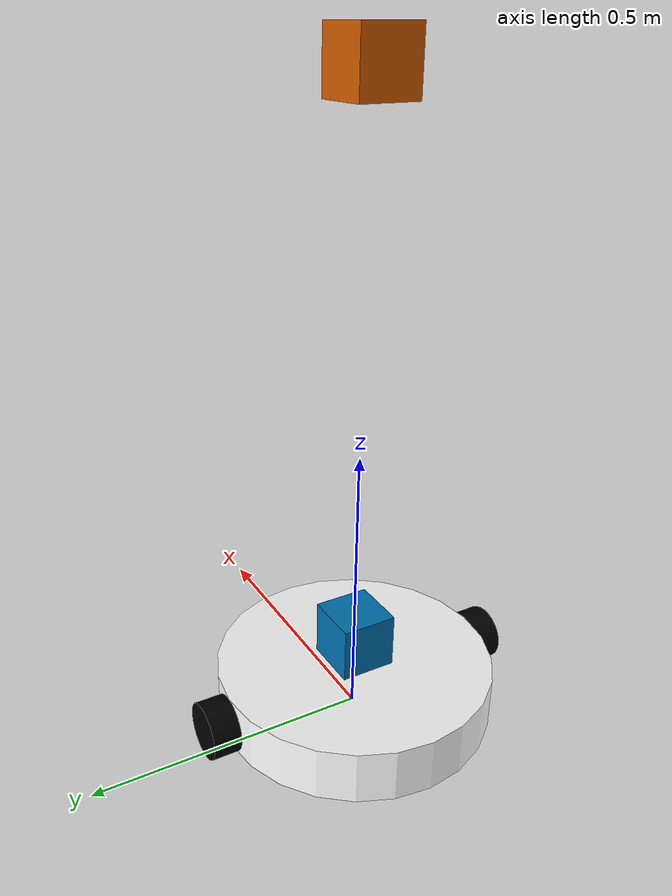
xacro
<?xml version="1.0"?>
<robot name="wheelchair" xmlns:xacro="http://ros.org/wiki/xacro">

  <!-- DEFINING GENERIC PROPERTIES THAT ARE USED IN THE XACRO FILE -->

  <!-- along x axis -->
  <xacro:property name="base_dia" value="0.5"/>
  <!-- along y axis -->
  <xacro:property name="base_dia" value="0.5"/>
  <!-- along z axis -->
  <xacro:property name="base_height" value="0.099"/>
  <xacro:property name="base_mass" value="50"/>
  <xacro:property name="wheel_dia" value="0.1"/>
  <xacro:property name="wheel_height" value="0.05"/>
  <xacro:property name="wheel_mass" value="0.5"/>
  <xacro:property name="box_side" value="0.1"/>

  <!-- COLOURS FOR MATERIAL -->
  <material name="white">
    <color rgba="1 1 1 1"/>
  </material>

  <material name="black">
    <color rgba ="0 0 0 1"/>
  </material>

  <material name="green">
    <color rgba="0 1 0 1"/>
  </material>

  <!-- MACROS FOR INERTIAL PROPERTIES -->
  <xacro:macro name="base_inertial">
    <inertial>
      <mass value="${base_mass}" />
      <inertia ixx="${(1/12)*base_mass*((base_dia*base_dia)+(base_height*base_height))}"
        ixy="0.0"
        ixz="0.0"
        iyy="${(1/12)*base_mass*((base_height*base_height)+(base_dia*base_dia))}"
        iyz="0.0"
        izz="${(1/12)*base_mass*((base_dia*base_dia)+(base_dia*base_dia))}" />
    </inertial>
  </xacro:macro>

  <xacro:macro name="wheel_inertial">
    <inertial>
      <mass value="${wheel_mass}" />
      <inertia ixx="1.0" ixy="0.0" ixz="0.0" iyy="1.0" iyz="0.0" izz="1.0" />
    </inertial>
  </xacro:macro>

  <xacro:macro name="sensor_inertial">
    <inertial>
      <mass value="1e-5" />
      <origin xyz="0 0 0" rpy="0 0 0"/>
      <inertia ixx="1e-6" ixy="0" ixz="0" iyy="1e-6" iyz="0" izz="1e-6" />
    </inertial>
  </xacro:macro>

  <!-- MACRO FOR GENERIC WHEEL. SUPPLY PARAMS TO PLACE THEM, JOINT INCLUDEDE IN MACRO -->
  <xacro:macro name="wheel" params="left_right rely">
    <link name="${left_right}_wheel">
      <visual>
        <origin xyz="0 0 0" rpy="${pi/2} 0 0"/>
        <geometry>
          <cylinder radius="${wheel_dia/2}" length="${wheel_height}"/>
        </geometry>
        <material name="black"/>
      </visual>
      <collision>
        <origin xyz="0 0 0" rpy="${pi/2} 0 0"/>
        <geometry>
          <cylinder radius="${wheel_dia/2}" length="${wheel_height}"/>
        </geometry>
      </collision>
      <xacro:wheel_inertial/>
    </link>

    <joint name="${left_right}_wheel_to_base_link" type="continuous">
      <origin xyz="0 ${rely*((base_dia/2+wheel_height/2))} ${wheel_dia/2}" rpy="0 0 0"/>
      <axis xyz="0 1 0" rpy="0 0 0"/>
      <parent link="base_link"/>
      <child link="${left_right}_wheel"/>
    </joint>
  </xacro:macro>

  <!-- DUMMY ROOT LINK SO THAT BASE LINK CAN BE GIVEN SOME MASS -->
  <link name="root_link"/>

  <!-- BASE LINK. MAIN BOX TO WHICH WHEEL AND EVERYTHING ELSE IS TO BE ATTACHED -->
  <link name="base_link">
    <visual>
      <origin xyz="0 0 ${wheel_dia/2}" rpy="0 0 0"/>
      <geometry>
        <cylinder length="${base_height}" radius="${base_dia/2}"/>
      </geometry>
      <material name="white"/>
    </visual>
    <collision name="base_link_collision">
      <origin xyz="0 0 ${wheel_dia/2}" rpy="0 0 0"/>
      <geometry>
        <cylinder length="${base_height}" radius="${base_dia/2}"/>
      </geometry>
    </collision>
    <xacro:base_inertial/>
  </link>

  <!-- CONNECT BASE LINK TO ROOT LINK -->
  <joint name="base_to_root_joint" type="fixed">
    <parent link="root_link"/>
    <child link="base_link"/>
  </joint>

  <!-- CREATING AN INSTANCE OF EACH WHEEL -->
  <xacro:wheel left_right="left" rely="1"/>
  <xacro:wheel left_right="right" rely="-1"/>

  <!-- LASER LINK -->
  <link name="laser_link">
    <collision>
    <origin xyz="0 0 0" rpy="0 0 0"/>
    <geometry>
      <box size="${box_side} ${box_side} ${box_side}"/>
    </geometry>
    </collision>
    <visual>
    <origin xyz="0 0 0" rpy="0 0 0"/>
      <geometry>
      <box size="${box_side} ${box_side} ${box_side}"/>
      </geometry>
    </visual>
    <xacro:sensor_inertial/>
  </link>

  <joint name="laser_joint" type="fixed">
    <axis xyz="0 0 1" />
    <origin xyz="0 0 ${base_height + box_side/2}" rpy="0 0 0"/>
    <parent link="base_link"/>
    <child link="laser_link"/>
  </joint>

  <!--_______________________ STEREO CAMERA _______________________-->
  <link name="sensor_link">
    <collision>
      <origin xyz="0 0 0" rpy="0 0 0"/>
      <geometry>
        <box size="${box_side} ${box_side} ${box_side}"/>
      </geometry>
    </collision>

    <visual>
      <origin xyz="0 0 0" rpy="0 0 0"/>
      <geometry>
        <box size="${box_side} ${box_side} ${box_side}"/>
      </geometry>
    </visual>

    <xacro:sensor_inertial/>
  </link>

  <!--_______________________ Stereocam Joint _______________________-->
  <joint name="sensor_joint" type="fixed">
    <origin xyz="0 0 ${wheel_dia+1}" rpy="0 0 0"/>
    <axis xyz="0 0 1" rpy="0 0 0"/>
    <parent link="base_link"/>
    <child link="sensor_link"/>
  </joint>

  <!-- SKID STEER PLUGIN -->
  <gazebo>
    <plugin name="differential_drive_controller" filename="libgazebo_ros_diff_drive.so">
      <updateRate>100.0</updateRate>
      <robotNamespace>/</robotNamespace>
      <leftJoint>left_wheel_to_base_link</leftJoint>
      <rightJoint>right_wheel_to_base_link</rightJoint>
      <wheelSeparation>0.5</wheelSeparation>
      <wheelDiameter>0.1</wheelDiameter>
      <wheelAcceleration>0.5</wheelAcceleration>
      <wheelTorque>50</wheelTorque>
      <robotBaseFrame>base_link</robotBaseFrame>
      <commandTopic>cmd_vel</commandTopic>
      <odometryTopic>odom</odometryTopic>
      <broadcastTF>false</broadcastTF>
      <odometryFrame>odom</odometryFrame>
      <odometrySource>world</odometrySource>
      <publishOdomTF>true</publishOdomTF>
      <robotBaseFrame>base_link</robotBaseFrame>
      <publishWheelTF>false</publishWheelTF>
      <publishTf>true</publishTf>
      <publishWheelJointState>true</publishWheelJointState>
      <legacyMode>false</legacyMode>
      <rosDebugLevel>na</rosDebugLevel>
    </plugin>
  </gazebo>

  <!-- JOINT STATE PUBLISHER -->
  <gazebo>
    <plugin name="joint_state_publisher" filename="libgazebo_ros_joint_state_publisher.so">
      <jointName>left_wheel_to_base_link, right_wheel_to_base_link</jointName>
    </plugin>
  </gazebo>

  <!-- LASER PLUGIN -->
  <gazebo reference="laser_link">
    <sensor type="ray" name="laser">
      <pose>0 0 0 0 0 0</pose>
      <visualize>true</visualize>
      <update_rate>40</update_rate>
      <ray>
      <scan>
      <horizontal>
        <samples>360</samples>
        <resolution>1</resolution>
        <min_angle>-3.1415926525897</min_angle>
        <max_angle>3.1415926525897</max_angle>
      </horizontal>
      </scan>
      <range>
      <min>0.10</min>
      <max>30.0</max>
      <resolution>0.01</resolution>
      </range>
      </ray>
      <plugin name="gazebo_ros_head_hokuyo_controller" filename="libgazebo_ros_laser.so">
        <topicName>/scan</topicName>
        <frameName>laser_link</frameName>
      </plugin>
    </sensor>
  </gazebo>

  <gazebo reference="sensor_link">
    <sensor type="multicamera" name="stereo_camera">
      <update_rate>30.0</update_rate>
      <camera name="left">
      <pose>${box_side} ${box_side/2} 0 0 0 0</pose>
        <horizontal_fov>1.3962634</horizontal_fov>
        <image>
          <width>800</width>
          <height>800</height>
          <format>R8G8B8</format>
        </image>
        <clip>
          <near>0.02</near>
          <far>300</far>
        </clip>
        <noise>
          <type>gaussian</type>
          <mean>0.0</mean>
          <stddev>0.007</stddev>
        </noise>
      </camera>
      <camera name="right">
        <pose>${box_side} -${box_side/2} 0 0 0 0</pose>
        <horizontal_fov>1.3962634</horizontal_fov>
        <image>
          <width>800</width>
          <height>800</height>
          <format>R8G8B8</format>
        </image>
        <clip>
          <near>0.02</near>
          <far>300</far>
        </clip>
        <noise>
          <type>gaussian</type>
          <mean>0.0</mean>
          <stddev>0.007</stddev>
        </noise>
      </camera>
      <plugin name="stereo_camera_controller" filename="libgazebo_ros_multicamera.so">
        <alwaysOn>true</alwaysOn>
        <updateRate>30.0</updateRate>
        <cameraName>stereo</cameraName>
        <imageTopicName>image_raw</imageTopicName>
        <cameraInfoTopicName>camera_info</cameraInfoTopicName>
        <frameName>sensor_link</frameName>
        <hackBaseline>0.07</hackBaseline>
        <distortionK1>0.0</distortionK1>
        <distortionK2>0.0</distortionK2>
        <distortionK3>0.0</distortionK3>
        <distortionT1>0.0</distortionT1>
        <distortionT2>0.0</distortionT2>
      </plugin>
    </sensor>
  </gazebo>

</robot>
